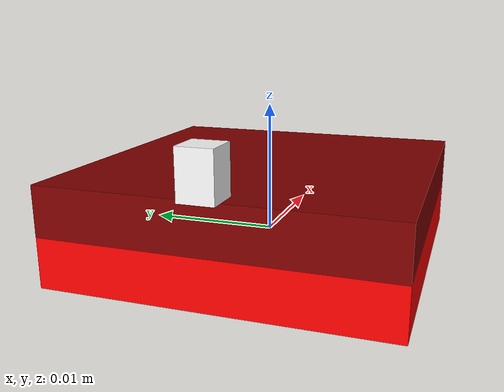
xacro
<?xml version="1.0"?>
<!-- Note that RViz axes show (http://www.ros.org/wiki/rviz/DisplayTypes/Axes):
     Red   = x
     Green = y
     Blue  = z
-->
<robot name="os5000"
       xmlns:sensor="http://playerstage.sourceforge.net/gazebo/xmlschema/#sensor"
       xmlns:controller="http://playerstage.sourceforge.net/gazebo/xmlschema/#controller"
       xmlns:interface="http://playerstage.sourceforge.net/gazebo/xmlschema/#interface"
       xmlns:xacro="http://ros.org/wiki/xacro"
>

    <xacro:include filename="$(find os5000)/urdf/materials.urdf.xacro"/>
    <xacro:include filename="$(find os5000)/urdf/pcb.urdf.xacro"/>

    <link name="base_link">
        <inertial>
            <mass value="0.1"/>
            <inertia ixx="0.01" ixy="0.0" ixz="0.0" iyy="0.01" iyz="0.0" izz="0.01"/>
        </inertial>

        <visual>
            <origin xyz="0 0 0" rpy="0 0 0"/>
            <geometry>
                <sphere radius="0.001"/>
            </geometry>
            <xacro:material_blue/>
        </visual>

        <collision>
            <origin xyz="0 0 0" rpy="0 0 0"/>
            <geometry>
                <sphere radius="0.001"/>
            </geometry>
            <contact_coefficients mu="0.1" kp="1000.0" kd="1.0"/>
        </collision>
    </link>
</robot>

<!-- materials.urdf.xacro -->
<robot
       xmlns:xacro="http://ros.org/wiki/xacro"
>

  <xacro:macro name="material_silver">
    <material name="silver">
      <color rgba="0.78 0.7686 0.7686 1.0"/>
    </material>
  </xacro:macro>

  <xacro:macro name="material_silver_gold">
    <material name="silver_gold">
      <color rgba="0.69 0.66 0.57 1.0"/>
    </material>
  </xacro:macro>

  <xacro:macro name="material_blue">
    <material name="blue">
      <color rgba="0.0 0.0 1.0 1.0"/>
    </material>
  </xacro:macro>

  <xacro:macro name="material_black">
    <material name="black">
      <color rgba="0.0 0.0 0.0 1.0"/>
    </material>
  </xacro:macro>

  <xacro:macro name="material_gray">
    <material name="gray">
      <color rgba="0.2 0.2 0.2 1.0"/>
    </material>
  </xacro:macro>

  <xacro:macro name="material_white">
    <material name="white">
      <color rgba="1.0 1.0 1.0 1.0"/>
    </material>
  </xacro:macro>

  <xacro:macro name="material_white_alpha_0.5">
    <material name="white_alpha_0.5">
      <color rgba="1.0 1.0 1.0 0.5"/>
    </material>
  </xacro:macro>

  <xacro:macro name="material_beige">
    <material name="beige">
      <color rgba="0.97 0.86 0.67 1.0"/>
    </material>
  </xacro:macro>

  <xacro:macro name="material_black">
    <material name="black">
      <color rgba="0.0 0.0 0.0 1.0"/>
    </material>
  </xacro:macro>

  <xacro:macro name="material_red">
    <material name="red">
      <color rgba="1.0 0.0 0.0 1.0"/>
    </material>
  </xacro:macro>

  <xacro:macro name="material_dark_red">
    <material name="dark_red">
      <color rgba="0.5 0.0 0.0 1.0"/>
    </material>
  </xacro:macro>

  <xacro:macro name="material_olive_green">
    <material name="olive_green">
      <color rgba="0.33 0.42 0.18 1.0"/>
    </material>
  </xacro:macro>

  <xacro:macro name="material_dark_green_alpha_0.5">
    <material name="dark_green">
      <color rgba="0.0 0.39 0.0 0.5"/>
    </material>
  </xacro:macro>

  <xacro:macro name="material_brown_alpha_0.5">
    <material name="brown">
      <color rgba="0.55 0.27 0.07 0.5"/>
    </material>
  </xacro:macro>
</robot>

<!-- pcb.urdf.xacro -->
<robot
       xmlns:sensor="http://playerstage.sourceforge.net/gazebo/xmlschema/#sensor"
       xmlns:controller="http://playerstage.sourceforge.net/gazebo/xmlschema/#controller"
       xmlns:interface="http://playerstage.sourceforge.net/gazebo/xmlschema/#interface"
       xmlns:xacro="http://ros.org/wiki/xacro"
>

    <xacro:property name="pcb_x_size" value="0.0254"/>
    <xacro:property name="pcb_y_size" value="0.0254"/>
    <xacro:property name="pcb_z_size" value="0.0075"/>
    <xacro:property name="connector_x_size" value="0.00254"/>
    <xacro:property name="connector_y_size" value="0.00254"/>
    <xacro:property name="connector_z_size" value="0.0035"/>

    <link name="pcb_top">
        <inertial>
            <mass value="0.1"/>
            <inertia ixx="1.01" ixy="0.0" ixz="1.01" iyy="3.03" iyz="0.0" izz="2.02"/>
        </inertial>

        <visual>
            <origin xyz="0 0 0" rpy="3.14 0 3.14"/>
            <geometry>
                <box size="${pcb_x_size} ${pcb_y_size} ${pcb_z_size/2.0}"/>
            </geometry>
            <xacro:material_dark_red/>
        </visual>

        <collision>
            <origin xyz="0 0 0" rpy="0 0 0"/>
            <geometry>
                <box size="${pcb_x_size} ${pcb_y_size} ${pcb_z_size/2.0}"/>
            </geometry>
            <contact_coefficients mu="0.1" kp="1000.0" kd="1.0"/>
        </collision>
    </link>

    <link name="pcb_bottom">
        <inertial>
            <mass value="0.1"/>
            <inertia ixx="1.01" ixy="0.0" ixz="1.01" iyy="3.03" iyz="0.0" izz="2.02"/>
        </inertial>

        <visual>
            <origin xyz="0 0 0" rpy="3.14 0 3.14"/>
            <geometry>
                <box size="${pcb_x_size} ${pcb_y_size} ${pcb_z_size/2.0}"/>
            </geometry>
            <xacro:material_red/>
        </visual>

        <collision>
            <origin xyz="0 0 0" rpy="0 0 0"/>
            <geometry>
                <box size="${pcb_x_size} ${pcb_y_size} ${pcb_z_size/2.0}"/>
            </geometry>
            <contact_coefficients mu="0.1" kp="1000.0" kd="1.0"/>
        </collision>
    </link>

    <link name="pcb_connector">
        <inertial>
            <mass value="0.1"/>
            <inertia ixx="1.01" ixy="0.0" ixz="1.01" iyy="3.03" iyz="0.0" izz="2.02"/>
        </inertial>

        <visual>
            <origin xyz="0 0 0" rpy="3.14 0 3.14"/>
            <geometry>
                <box size="${connector_x_size} ${connector_y_size} ${connector_z_size}"/>
            </geometry>
            <xacro:material_white/>
        </visual>

        <collision>
            <origin xyz="0 0 0" rpy="0 0 0"/>
            <geometry>
                <box size="${connector_x_size} ${connector_y_size} ${connector_z_size}"/>
            </geometry>
            <contact_coefficients mu="0.1" kp="1000.0" kd="1.0"/>
        </collision>
    </link>

    <joint name="base_link_to_pcb_bottom" type="fixed">
        <parent link="base_link"/>
        <child link="pcb_bottom"/>
        <origin xyz="0 0 0" rpy="0 0 0"/>
    </joint>

    <joint name="pcb_bottom_to_pcb_top" type="fixed">
        <parent link="pcb_bottom"/>
        <child link="pcb_top"/>
        <origin xyz="0 0 ${pcb_z_size/2.0}" rpy="0 0 0"/>
    </joint>

    <joint name="pcb_bottom_to_pcb_connector" type="fixed">
        <parent link="pcb_bottom"/>
        <child link="pcb_connector"/>
        <origin xyz="${-1.0*pcb_x_size/2.0} 0 ${pcb_z_size}" rpy="0 0 0"/>
    </joint>
</robot>
